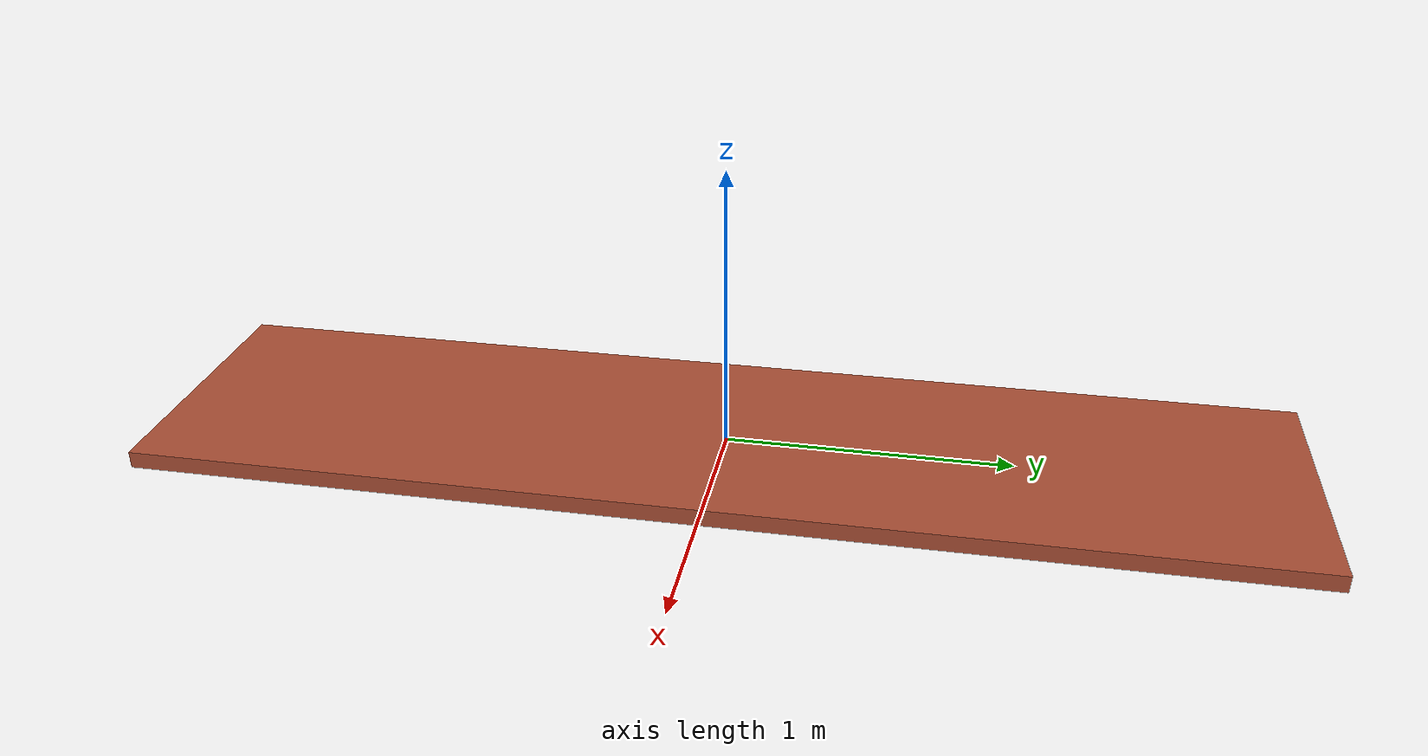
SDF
<?xml version='1.0'?>
<sdf version='1.6'>
  <model name='simple_box'>
    <pose frame=''>0 0 0 0 -0 0</pose>
    <link name='box_1'>
      <collision name='box_1_collision'>
        <geometry>
          <box>
            <size>1.0 4.0 0.06</size>
          </box>
        </geometry>
        <surface>
          <friction>
            <ode>
              <mu>10000.0</mu>
              <mu2>100000.0</mu2>
            </ode>
          </friction>
        </surface>
        <pose frame=''>0 0 0 0 0 0</pose>
      </collision>
      <visual name='box_1_Visual'>
        <pose frame=''>0 0 0 0 0 0</pose>
        <geometry>
          <box>
            <size>1.0 4.0 0.06</size>
          </box>
        </geometry>
        <material>
          <script>
            <uri>file://media/materials/scripts/gazebo.material</uri>
            <name>Gazebo/Bricks</name>
          </script>
          <ambient>1 1 1 1</ambient>
        </material>
      </visual>
      <gravity>1</gravity>
      <pose frame=''>0 0 0 0 0 0</pose>
    </link>
    <static>1</static>
  </model>
</sdf>
